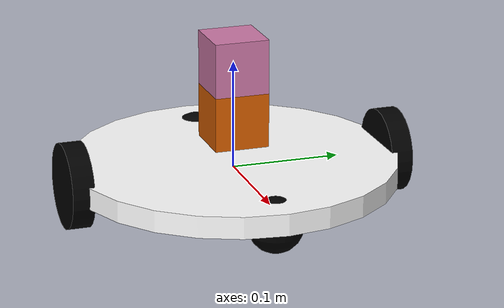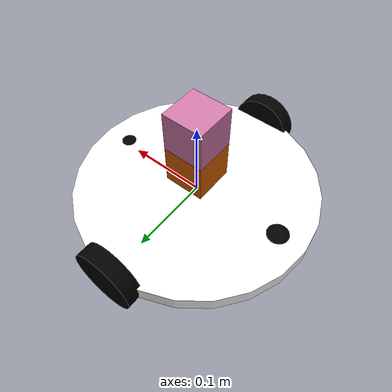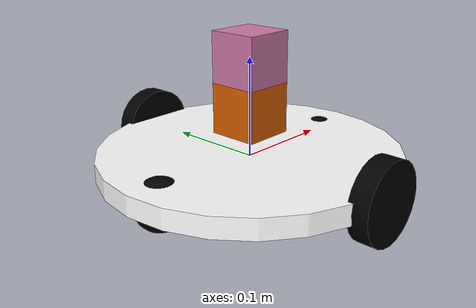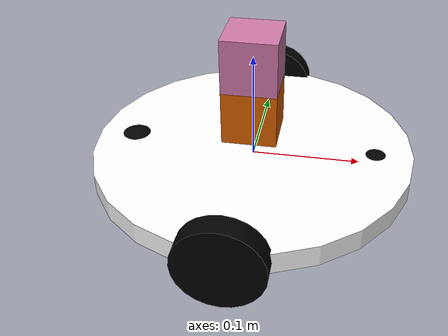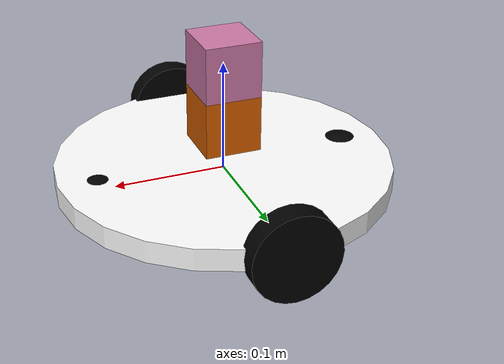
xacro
<?xml version="1.0"?>

<robot xmlns:xacro="http://www.ros.org/wiki/xacro" name="nav2_mobile_robot">
<xacro:include filename="$(find nav2_mobile_robot)/nav2_mobile_robot_macro.xacro"/>

<xacro:property name="base_radius" value="0.15" />
<xacro:property name="passive_wheel_height" value="0.04" />
<xacro:property name="passive_wheel_radius" value="0.025" />
<xacro:property name="passive_wheel_mass" value="0.5" />
<xacro:property name="wheel_radius" value="0.039" />
<xacro:property name="wheel_height" value="0.02" />
<xacro:property name="wheel_mass" value="2.5" />

    <link name="base_link">
    <inertial>
        <mass value="5" />
        <origin xyz="0 0 0" />
        <xacro:cylinder_inertia m="5" r="${base_radius}" h="0.02"/>
    </inertial>

    <visual>
        <origin xyz="0 0 0" rpy="0 0 0" />
        <geometry>
        <cylinder length="0.02" radius="${base_radius}" />
        </geometry>
        <material name="White" />
    </visual>

    <collision>
        <origin xyz="0 0 0" rpy="0 0 0" />
        <geometry>
        <cylinder length="0.02" radius="${base_radius}" />
        </geometry>
    </collision>
    </link>

    <!-- FRONT PASSIVE WHEEL -->
    <xacro:passive_wheel_link name="passive_wheel_front_link">
    <origin xyz="0 0.02 0" rpy="${M_PI/2} 0 0" />
    </xacro:passive_wheel_link>

    <xacro:passive_wheel_joint name="passive_wheel_front_joint"
        parent="base_link"
        child="passive_wheel_front_link">
    <origin xyz="0.115 0.0 0.007" rpy="${-M_PI/2} 0 0"/>
    </xacro:passive_wheel_joint>

    <!-- BACK PASSIVE WHEEL -->
    <xacro:passive_wheel_link name="passive_wheel_back_link">
    <origin xyz="0.02 0.02 0" rpy="${M_PI/2} 0 0" />
    </xacro:passive_wheel_link>

    <xacro:passive_wheel_joint name="passive_wheel_back_joint"
        parent="base_link"
        child="passive_wheel_back_link">
    <origin xyz="-0.135 0.0 0.009" rpy="${-M_PI/2} 0 0"/>
    </xacro:passive_wheel_joint>

	<xacro:wheel side="right" parent="base_link" translateX="0" translateY="-${base_radius}" />
	<xacro:wheel side="left" parent="base_link" translateX="0" translateY="${base_radius}" />

	<link name="lidar_link">
		 <visual>
      <origin xyz="0 0 0.0" rpy="0 0 0"/>
      <geometry>
			  <box size="0.05 0.05 0.05" />
      </geometry>
    </visual>

    <collision>
      <origin xyz="0 0 0.0" rpy="0 0 0"/>
      <geometry>
			<box size="0.05 0.05 0.05" />
      </geometry>
    </collision>

    <inertial>
      <origin xyz="0 0 0.0" rpy="0 0 0"/>
      <mass value="1"/>
      <inertia
        ixx="1.0" ixy="0.0" ixz="0.0"
        iyy="1.0" iyz="0.0"
        izz="1.0"/>
    </inertial>

	</link>

	  <joint name='lidar_sensor_joint' type='fixed'>
      <origin xyz="0 0 0.05" rpy="0 0 0"/>
      <parent link="base_link"/>
      <child link="lidar_link"/>

    </joint>

  <link name="depth_link">
    <visual>
    <origin xyz="0 0 0.0" rpy="0 0 0"/>
      <geometry>
        <box size="0.05 0.05 0.05" />
      </geometry>
    </visual>

    <collision>
      <origin xyz="0 0 0.0" rpy="0 0 0"/>
      <geometry>
        <box size="0.05 0.05 0.05" />
      </geometry>
    </collision>

    <inertial>
      <origin xyz="0 0 0.0" rpy="0 0 0"/>
      <mass value="1"/>
      <inertia
        ixx="1.0" ixy="0.0" ixz="0.0"
        iyy="1.0" iyz="0.0"
        izz="1.0"/>
    </inertial>

  </link>

  <joint name='depth_link_joint' type='fixed'>
    <origin xyz="0 0 0.1" rpy="0 0 0"/>
    <parent link="base_link"/>
    <child link="depth_link"/>
  </joint>

  	  <gazebo reference="lidar_link">
        <sensor name="lidar" type='gpu_lidar'>
            <pose>0 0 0.0 0 0 0</pose>
            <topic>lidar</topic>
            <update_rate>10</update_rate>
            <ray>
                <scan>
                    <horizontal>
                        <samples>640</samples>
                        <resolution>1</resolution>
                        <min_angle>-1.396263</min_angle>
                        <max_angle>1.396263</max_angle>
                    </horizontal>
                    <vertical>
                        <samples>16</samples>
                        <resolution>1</resolution>
                        <min_angle>-0.261799</min_angle>
                        <max_angle>0.261799</max_angle>
                    </vertical>
                </scan>
                <range>
                    <min>0.1</min>
                    <max>10.0</max>
                    <resolution>0.01</resolution>
                </range>
            </ray>
            <always_on>1</always_on>
            <visualize>true</visualize>
			<gz_frame_id>lidar_link</gz_frame_id>
            <plugin filename="libignition-gazebo-sensors-system.so" name="ignition::gazebo::systems::Sensors">
				<render_engine>ogre2</render_engine>
			</plugin>
        </sensor>
    </gazebo>

	<gazebo reference="depth_link">
        <xacro:include filename="$(find realsense2_description)/urdf/_d435.urdf.xacro"/>
        <xacro:sensor_d435 parent="base_link" use_nominal_extrinsics="true" add_plug="false" use_mesh="true">
            <origin xyz="0 0 0.5" rpy="0 0 0"/>
        </xacro:sensor_d435>

        <sensor name="cube_camera" type="camera">
            <always_on>1</always_on>
            <update_rate>30</update_rate>
            <visualize>1</visualize>
            <pose>0 0.0175 0.5125 0 -0 0</pose>
            <topic>/camera/image_raw</topic>
            <camera name="camera">
                <horizontal_fov>1.48702</horizontal_fov>
                <image>
                    <width>1280</width>
                    <height>720</height>
                    <format>RGB_INT8</format>
                </image>
                <clip>
                    <near>0.2</near>
                    <far>10</far>
                </clip>
                <noise>
                    <type>gaussian</type>
                    <mean>0</mean>
                    <stddev>0.007</stddev>
                </noise>
            </camera>
        </sensor>

        <sensor name='d435_depth' type='depth_camera'>
            <ignition_frame_id>camera_link</ignition_frame_id>
            <always_on>1</always_on>
            <update_rate>30</update_rate>
            <visualize>1</visualize>
            <topic>/depth/image_raw</topic>
            <pose>0 0.0175 0.5125 0 -0 0</pose>
            <camera name='d435'>
                <ignition_frame_id>camera_link</ignition_frame_id>
                <horizontal_fov>1.48702</horizontal_fov>
                <image>
                    <width>1280</width>
                    <height>720</height>
                </image>
                <clip>
                    <near>0.2</near>
                    <far>10</far>
                </clip>
                <noise>
                    <type>gaussian</type>
                    <mean>0</mean>
                    <stddev>0.1</stddev>
                </noise>
            </camera>
        </sensor>
    </gazebo>

   <gazebo>
    <plugin filename="libignition-gazebo-odometry-publisher-system" name="ignition::gazebo::systems::OdometryPublisher">
      <odom_publish_frequency>50</odom_publish_frequency>
      <odom_topic>/odom</odom_topic>
      <odom_frame>odom</odom_frame>
      <robot_base_frame>base_link</robot_base_frame>
      <tf_topic>/odom/tf</tf_topic>
    </plugin>
    </gazebo>

    <gazebo>
    <plugin
      filename="libignition-gazebo-diff-drive-system.so"
      name="ignition::gazebo::systems::DiffDrive">
      <left_joint>left_wheel_joint</left_joint>
      <right_joint>right_wheel_joint</right_joint>
      <wheel_separation>${2*base_radius}</wheel_separation>
      <wheel_radius>${wheel_radius}</wheel_radius>

      <odom_publish_frequency>10</odom_publish_frequency>
      <topic>cmd_vel</topic>
      <robotBaseFrame>base_link</robotBaseFrame>
    </plugin>

    <plugin filename="libignition-gazebo-joint-state-publisher-system.so"
        name="ignition::gazebo::systems::JointStatePublisher">
        <topic>joint_states</topic>
      </plugin>
  </gazebo>

</robot>

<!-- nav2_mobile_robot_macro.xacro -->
<robot xmlns:xacro="http://www.ros.org/wiki/xacro" name="nav2_mobile_robot">

    <xacro:property name="M_PI" value="3.1415926535897931"/>

    <!--defining material-->
    <material name="Black">
        <color rgba="0.0 0.0 0.0 1.0"/>
    </material>
    <material name="White">
        <color rgba="1.0 1.0 1.0 1.0"/>
    </material>

    <xacro:macro name="cylinder_inertia" params="m r h">
    <inertia ixx="${m*(3*r*r+h*h)/12}" ixy="0.0" ixz="0.0"
             iyy="${m*(3*r*r+h*h)/12}" iyz="0.0"
             izz="${m*r*r/2}"/>
    <!--this formula describe how hard is it going to rotate a body about axis-->
    </xacro:macro>

    <xacro:macro name="passive_wheel_joint" params="name parent child *origin">
      <joint name="${name}" type="fixed" >
        <parent link="${parent}" />
        <child link="${child}" />
        <xacro:insert_block name="origin" />
      </joint>
    </xacro:macro>

    <xacro:macro name="passive_wheel_link" params="name *origin">
        <link name="${name}">
            <visual>
                <xacro:insert_block name="origin" />
                <geometry>
                    <sphere radius="${passive_wheel_radius}" />
                </geometry>
                <material name="Black" />
            </visual>

            <collision>
                <geometry>
                    <sphere radius="${passive_wheel_radius}" />
                </geometry>
                <origin xyz="0 0.02 0" rpy="${M_PI/2} 0 0" />
                <!--this defin the position and orientatin of wheel that is 2cm offset in y-axis roll of 90deg(roll hapens in x axis) -->
            </collision>

            <inertial>
                <mass value="${passive_wheel_mass}" />
                    <origin xyz="0 0 0" />
                    <inertia  ixx="0.001" ixy="0.0" ixz="0.0"
                            iyy="0.001" iyz="0.0"
                                izz="0.001" />
            </inertial>
        </link>
    </xacro:macro>

  <xacro:macro name="wheel" params="side parent translateX translateY">
    <link name="${side}_wheel">
      <visual>
        <origin xyz="0 0 0" rpy="${M_PI/2} 0  0 " />
        <geometry>
          <cylinder length="${wheel_height}" radius="${wheel_radius}" />
        </geometry>
              <material name="Black" />
      </visual>
      <collision>
        <origin xyz="0 0 0" rpy="${M_PI/2} 0 0 " />
        <geometry>
          <cylinder length="${wheel_height}" radius="${wheel_radius}" />
        </geometry>
      </collision>
      <inertial>
        <mass value="${wheel_mass}" />
        <origin xyz="0 0 0" />
				<inertia ixx="0.001" ixy="0.0" ixz="0.0"
               iyy="0.001" iyz="0.0"
               izz="0.001" />
      </inertial>
    </link>

    <joint name="${side}_wheel_joint" type="continuous">
      <parent link="${parent}"/>
      <child link="${side}_wheel"/>

        <origin xyz="0 ${translateY} 0" rpy="0 0 0" />
      <axis xyz="0 1 0" rpy="0 0 0" />
      <limit effort="100" velocity="100"/>
      <joint_properties damping="0.0" friction="0.0"/>
    </joint>

  </xacro:macro>

</robot>
